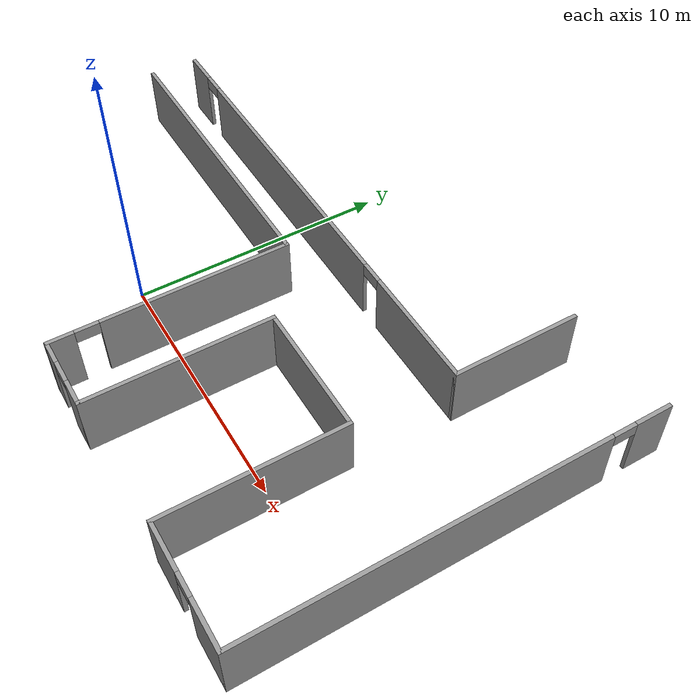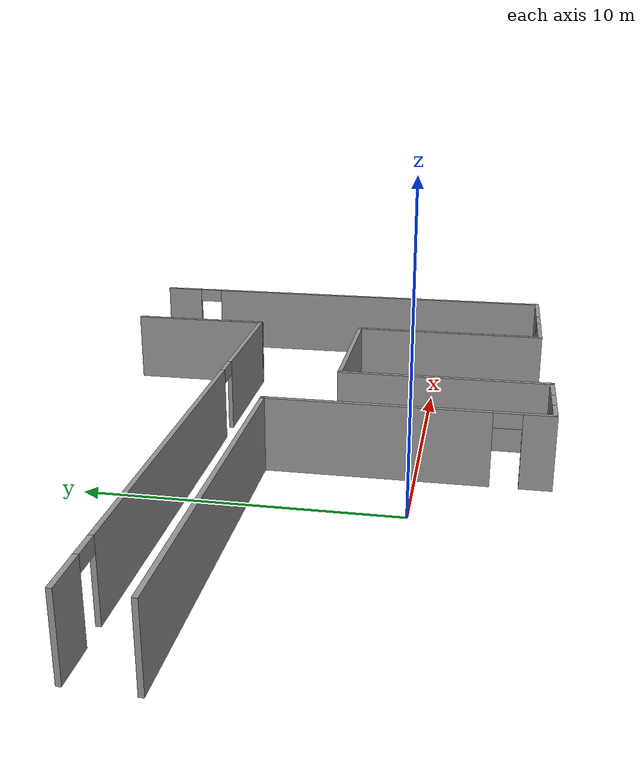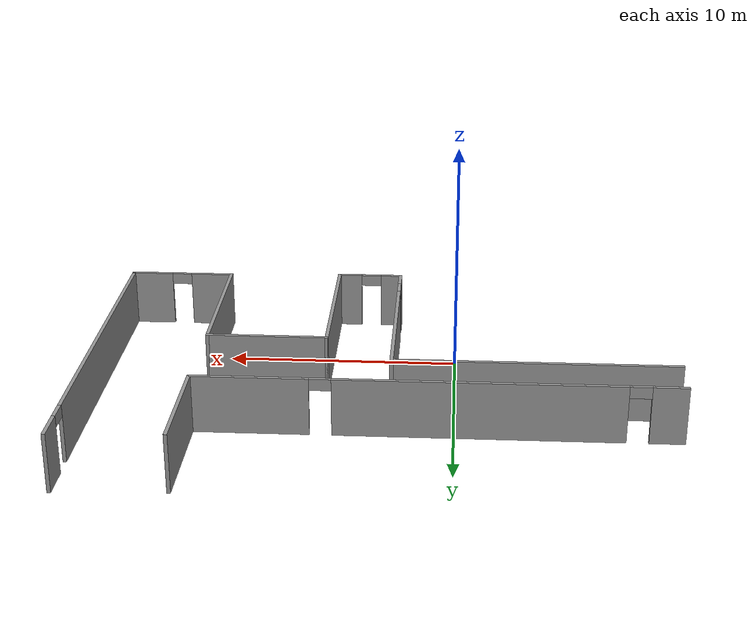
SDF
<?xml version='1.0'?>
<sdf version='1.7'>
  <model name='mil_building'>
    <pose>2.95776 3.85433 0 0 -0 0</pose>
    <link name='Wall_10'>
      <collision name='Wall_10_Collision'>
        <geometry>
          <box>
            <size>0.15 0.15 2.5</size>
          </box>
        </geometry>
        <pose>0 0 1.25 0 -0 0</pose>
      </collision>
      <visual name='Wall_10_Visual'>
        <pose>0 0 1.25 0 -0 0</pose>
        <geometry>
          <box>
            <size>0.15 0.15 2.5</size>
          </box>
        </geometry>
        <material>
          <script>
            <uri>file://media/materials/scripts/gazebo.material</uri>
            <name>Gazebo/Grey</name>
          </script>
          <ambient>1 1 1 1</ambient>
        </material>
        <meta>
          <layer>0</layer>
        </meta>
      </visual>
      <pose>2.5019 -8.05 0 0 -0 0</pose>
    </link>
    <link name='Wall_11'>
      <collision name='Wall_11_Collision'>
        <geometry>
          <box>
            <size>7.20977 0.15 2.5</size>
          </box>
        </geometry>
        <pose>0 0 1.25 0 -0 0</pose>
      </collision>
      <visual name='Wall_11_Visual'>
        <pose>0 0 1.25 0 -0 0</pose>
        <geometry>
          <box>
            <size>7.20977 0.15 2.5</size>
          </box>
        </geometry>
        <material>
          <script>
            <uri>file://media/materials/scripts/gazebo.material</uri>
            <name>Gazebo/Grey</name>
          </script>
          <ambient>0.827451 0.843137 0.811765 1</ambient>
        </material>
        <meta>
          <layer>0</layer>
        </meta>
      </visual>
      <pose>2.5019 -4.52011 0 0 -0 1.5708</pose>
    </link>
    <link name='Wall_16'>
      <collision name='Wall_16_Collision'>
        <geometry>
          <box>
            <size>6.95977 0.15 2.5</size>
          </box>
        </geometry>
        <pose>0 0 1.25 0 -0 0</pose>
      </collision>
      <visual name='Wall_16_Visual'>
        <pose>0 0 1.25 0 -0 0</pose>
        <geometry>
          <box>
            <size>6.95977 0.15 2.5</size>
          </box>
        </geometry>
        <material>
          <script>
            <uri>file://media/materials/scripts/gazebo.material</uri>
            <name>Gazebo/Grey</name>
          </script>
          <ambient>1 1 1 1</ambient>
        </material>
        <meta>
          <layer>0</layer>
        </meta>
      </visual>
      <pose>7.6019 -4.39511 0 0 -0 -1.5708</pose>
    </link>
    <link name='Wall_17'>
      <pose>9.9019 -7.8 0 0 -0 0</pose>
      <visual name='Wall_17_Visual_0'>
        <pose>-1.40412 0 1.25 0 -0 0</pose>
        <geometry>
          <box>
            <size>1.94176 0.15 2.5</size>
          </box>
        </geometry>
        <material>
          <script>
            <uri>file://media/materials/scripts/gazebo.material</uri>
            <name>Gazebo/Grey</name>
          </script>
          <ambient>0.827451 0.843137 0.811765 1</ambient>
        </material>
        <meta>
          <layer>0</layer>
        </meta>
      </visual>
      <collision name='Wall_17_Collision_0'>
        <geometry>
          <box>
            <size>1.94176 0.15 2.5</size>
          </box>
        </geometry>
        <pose>-1.40412 0 1.25 0 -0 0</pose>
      </collision>
      <visual name='Wall_17_Visual_1'>
        <pose>1.42088 0 1.25 0 -0 0</pose>
        <geometry>
          <box>
            <size>1.90823 0.15 2.5</size>
          </box>
        </geometry>
        <material>
          <script>
            <uri>file://media/materials/scripts/gazebo.material</uri>
            <name>Gazebo/Grey</name>
          </script>
          <ambient>0.827451 0.843137 0.811765 1</ambient>
        </material>
        <meta>
          <layer>0</layer>
        </meta>
      </visual>
      <collision name='Wall_17_Collision_1'>
        <geometry>
          <box>
            <size>1.90823 0.15 2.5</size>
          </box>
        </geometry>
        <pose>1.42088 0 1.25 0 -0 0</pose>
      </collision>
      <visual name='Wall_17_Visual_2'>
        <pose>0.016765 0 2.25 0 -0 0</pose>
        <geometry>
          <box>
            <size>0.9 0.15 0.5</size>
          </box>
        </geometry>
        <material>
          <script>
            <uri>file://media/materials/scripts/gazebo.material</uri>
            <name>Gazebo/Grey</name>
          </script>
          <ambient>0.827451 0.843137 0.811765 1</ambient>
        </material>
        <meta>
          <layer>0</layer>
        </meta>
      </visual>
      <collision name='Wall_17_Collision_2'>
        <geometry>
          <box>
            <size>0.9 0.15 0.5</size>
          </box>
        </geometry>
        <pose>0.016765 0 2.25 0 -0 0</pose>
      </collision>
    </link>
    <link name='Wall_18'>
      <pose>12.2019 0.125 0 0 -0 1.5708</pose>
      <visual name='Wall_18_Visual_0'>
        <pose>-1.17215 0 1.25 0 -0 0</pose>
        <geometry>
          <box>
            <size>13.6557 0.15 2.5</size>
          </box>
        </geometry>
        <material>
          <script>
            <uri>file://media/materials/scripts/gazebo.material</uri>
            <name>Gazebo/Grey</name>
          </script>
          <ambient>0.827451 0.843137 0.811765 1</ambient>
        </material>
        <meta>
          <layer>0</layer>
        </meta>
      </visual>
      <collision name='Wall_18_Collision_0'>
        <geometry>
          <box>
            <size>13.6557 0.15 2.5</size>
          </box>
        </geometry>
        <pose>-1.17215 0 1.25 0 -0 0</pose>
      </collision>
      <visual name='Wall_18_Visual_1'>
        <pose>7.27785 0 1.25 0 -0 0</pose>
        <geometry>
          <box>
            <size>1.4443 0.15 2.5</size>
          </box>
        </geometry>
        <material>
          <script>
            <uri>file://media/materials/scripts/gazebo.material</uri>
            <name>Gazebo/Grey</name>
          </script>
          <ambient>0.827451 0.843137 0.811765 1</ambient>
        </material>
        <meta>
          <layer>0</layer>
        </meta>
      </visual>
      <collision name='Wall_18_Collision_1'>
        <geometry>
          <box>
            <size>1.4443 0.15 2.5</size>
          </box>
        </geometry>
        <pose>7.27785 0 1.25 0 -0 0</pose>
      </collision>
      <visual name='Wall_18_Visual_2'>
        <pose>6.1057 0 2.25 0 -0 0</pose>
        <geometry>
          <box>
            <size>0.9 0.15 0.5</size>
          </box>
        </geometry>
        <material>
          <script>
            <uri>file://media/materials/scripts/gazebo.material</uri>
            <name>Gazebo/Grey</name>
          </script>
          <ambient>0.827451 0.843137 0.811765 1</ambient>
        </material>
        <meta>
          <layer>0</layer>
        </meta>
      </visual>
      <collision name='Wall_18_Collision_2'>
        <geometry>
          <box>
            <size>0.9 0.15 0.5</size>
          </box>
        </geometry>
        <pose>6.1057 0 2.25 0 -0 0</pose>
      </collision>
    </link>
    <link name='Wall_20'>
      <collision name='Wall_20_Collision'>
        <geometry>
          <box>
            <size>5 0.15 2.5</size>
          </box>
        </geometry>
        <pose>0 0 1.25 0 -0 0</pose>
      </collision>
      <visual name='Wall_20_Visual'>
        <pose>0 0 1.25 0 -0 0</pose>
        <geometry>
          <box>
            <size>5 0.15 2.5</size>
          </box>
        </geometry>
        <material>
          <script>
            <uri>file://media/materials/scripts/gazebo.material</uri>
            <name>Gazebo/Grey</name>
          </script>
          <ambient>0.827451 0.843137 0.811765 1</ambient>
        </material>
        <meta>
          <layer>0</layer>
        </meta>
      </visual>
      <pose>7.69848 5.40255 0 0 -0 1.5708</pose>
    </link>
    <link name='Wall_22'>
      <collision name='Wall_22_Collision'>
        <geometry>
          <box>
            <size>5.25 0.15 2.5</size>
          </box>
        </geometry>
        <pose>0 0 1.25 0 -0 0</pose>
      </collision>
      <visual name='Wall_22_Visual'>
        <pose>0 0 1.25 0 -0 0</pose>
        <geometry>
          <box>
            <size>5.25 0.15 2.5</size>
          </box>
        </geometry>
        <material>
          <script>
            <uri>file://media/materials/scripts/gazebo.material</uri>
            <name>Gazebo/Grey</name>
          </script>
          <ambient>0.827451 0.843137 0.811765 1</ambient>
        </material>
        <meta>
          <layer>0</layer>
        </meta>
      </visual>
      <pose>5.0519 -0.990227 0 0 -0 0</pose>
    </link>
    <link name='Wall_3'>
      <pose>-2.22652 2.97755 0 0 -0 0</pose>
      <visual name='Wall_3_Visual_0'>
        <pose>-9.26763 0 1.25 0 -0 0</pose>
        <geometry>
          <box>
            <size>1.46474 0.15 2.5</size>
          </box>
        </geometry>
        <material>
          <script>
            <uri>file://media/materials/scripts/gazebo.material</uri>
            <name>Gazebo/Grey</name>
          </script>
          <ambient>0.827451 0.843137 0.811765 1</ambient>
        </material>
        <meta>
          <layer>0</layer>
        </meta>
      </visual>
      <collision name='Wall_3_Collision_0'>
        <geometry>
          <box>
            <size>1.46474 0.15 2.5</size>
          </box>
        </geometry>
        <pose>-9.26763 0 1.25 0 -0 0</pose>
      </collision>
      <visual name='Wall_3_Visual_1'>
        <pose>-1.71657 0 1.25 0 -0 0</pose>
        <geometry>
          <box>
            <size>11.8374 0.15 2.5</size>
          </box>
        </geometry>
        <material>
          <script>
            <uri>file://media/materials/scripts/gazebo.material</uri>
            <name>Gazebo/Grey</name>
          </script>
          <ambient>0.827451 0.843137 0.811765 1</ambient>
        </material>
        <meta>
          <layer>0</layer>
        </meta>
      </visual>
      <collision name='Wall_3_Collision_1'>
        <geometry>
          <box>
            <size>11.8374 0.15 2.5</size>
          </box>
        </geometry>
        <pose>-1.71657 0 1.25 0 -0 0</pose>
      </collision>
      <visual name='Wall_3_Visual_2'>
        <pose>7.55105 0 1.25 0 -0 0</pose>
        <geometry>
          <box>
            <size>4.89789 0.15 2.5</size>
          </box>
        </geometry>
        <material>
          <script>
            <uri>file://media/materials/scripts/gazebo.material</uri>
            <name>Gazebo/Grey</name>
          </script>
          <ambient>0.827451 0.843137 0.811765 1</ambient>
        </material>
        <meta>
          <layer>0</layer>
        </meta>
      </visual>
      <collision name='Wall_3_Collision_2'>
        <geometry>
          <box>
            <size>4.89789 0.15 2.5</size>
          </box>
        </geometry>
        <pose>7.55105 0 1.25 0 -0 0</pose>
      </collision>
      <visual name='Wall_3_Visual_3'>
        <pose>-8.08526 0 2.25 0 -0 0</pose>
        <geometry>
          <box>
            <size>0.9 0.15 0.5</size>
          </box>
        </geometry>
        <material>
          <script>
            <uri>file://media/materials/scripts/gazebo.material</uri>
            <name>Gazebo/Grey</name>
          </script>
          <ambient>0.827451 0.843137 0.811765 1</ambient>
        </material>
        <meta>
          <layer>0</layer>
        </meta>
      </visual>
      <collision name='Wall_3_Collision_3'>
        <geometry>
          <box>
            <size>0.9 0.15 0.5</size>
          </box>
        </geometry>
        <pose>-8.08526 0 2.25 0 -0 0</pose>
      </collision>
      <visual name='Wall_3_Visual_4'>
        <pose>4.65211 0 2.25 0 -0 0</pose>
        <geometry>
          <box>
            <size>0.9 0.15 0.5</size>
          </box>
        </geometry>
        <material>
          <script>
            <uri>file://media/materials/scripts/gazebo.material</uri>
            <name>Gazebo/Grey</name>
          </script>
          <ambient>0.827451 0.843137 0.811765 1</ambient>
        </material>
        <meta>
          <layer>0</layer>
        </meta>
      </visual>
      <collision name='Wall_3_Collision_4'>
        <geometry>
          <box>
            <size>0.9 0.15 0.5</size>
          </box>
        </geometry>
        <pose>4.65211 0 2.25 0 -0 0</pose>
      </collision>
    </link>
    <link name='Wall_5'>
      <collision name='Wall_5_Collision'>
        <geometry>
          <box>
            <size>12 0.15 2.5</size>
          </box>
        </geometry>
        <pose>0 0 1.25 0 -0 0</pose>
      </collision>
      <visual name='Wall_5_Visual'>
        <pose>0 0 1.25 0 -0 0</pose>
        <geometry>
          <box>
            <size>12 0.15 2.5</size>
          </box>
        </geometry>
        <material>
          <script>
            <uri>file://media/materials/scripts/gazebo.material</uri>
            <name>Gazebo/Grey</name>
          </script>
          <ambient>0.827451 0.843137 0.811765 1</ambient>
        </material>
        <meta>
          <layer>0</layer>
        </meta>
      </visual>
      <pose>-6.2769 1.04895 0 0 -0 0</pose>
    </link>
    <link name='Wall_7'>
      <pose>-0.348098 -3.5 0 0 -0 -1.5708</pose>
      <visual name='Wall_7_Visual_0'>
        <pose>-0.971314 0 1.25 0 -0 0</pose>
        <geometry>
          <box>
            <size>7.30737 0.15 2.5</size>
          </box>
        </geometry>
        <material>
          <script>
            <uri>file://media/materials/scripts/gazebo.material</uri>
            <name>Gazebo/Grey</name>
          </script>
          <ambient>0.827451 0.843137 0.811765 1</ambient>
        </material>
        <meta>
          <layer>0</layer>
        </meta>
      </visual>
      <collision name='Wall_7_Collision_0'>
        <geometry>
          <box>
            <size>7.30737 0.15 2.5</size>
          </box>
        </geometry>
        <pose>-0.971314 0 1.25 0 -0 0</pose>
      </collision>
      <visual name='Wall_7_Visual_1'>
        <pose>4.10369 0 1.25 0 -0 0</pose>
        <geometry>
          <box>
            <size>1.04263 0.15 2.5</size>
          </box>
        </geometry>
        <material>
          <script>
            <uri>file://media/materials/scripts/gazebo.material</uri>
            <name>Gazebo/Grey</name>
          </script>
          <ambient>0.827451 0.843137 0.811765 1</ambient>
        </material>
        <meta>
          <layer>0</layer>
        </meta>
      </visual>
      <collision name='Wall_7_Collision_1'>
        <geometry>
          <box>
            <size>1.04263 0.15 2.5</size>
          </box>
        </geometry>
        <pose>4.10369 0 1.25 0 -0 0</pose>
      </collision>
      <visual name='Wall_7_Visual_2'>
        <pose>3.13237 0 2.25 0 -0 0</pose>
        <geometry>
          <box>
            <size>0.9 0.15 0.5</size>
          </box>
        </geometry>
        <material>
          <script>
            <uri>file://media/materials/scripts/gazebo.material</uri>
            <name>Gazebo/Grey</name>
          </script>
          <ambient>0.827451 0.843137 0.811765 1</ambient>
        </material>
        <meta>
          <layer>0</layer>
        </meta>
      </visual>
      <collision name='Wall_7_Collision_2'>
        <geometry>
          <box>
            <size>0.9 0.15 0.5</size>
          </box>
        </geometry>
        <pose>3.13237 0 2.25 0 -0 0</pose>
      </collision>
    </link>
    <link name='Wall_9'>
      <pose>1.0769 -8.05 0 0 -0 0</pose>
      <visual name='Wall_9_Visual_0'>
        <pose>-1.00827 0 1.25 0 -0 0</pose>
        <geometry>
          <box>
            <size>0.983456 0.15 2.5</size>
          </box>
        </geometry>
        <material>
          <script>
            <uri>file://media/materials/scripts/gazebo.material</uri>
            <name>Gazebo/Grey</name>
          </script>
          <ambient>0.827451 0.843137 0.811765 1</ambient>
        </material>
        <meta>
          <layer>0</layer>
        </meta>
      </visual>
      <collision name='Wall_9_Collision_0'>
        <geometry>
          <box>
            <size>0.983456 0.15 2.5</size>
          </box>
        </geometry>
        <pose>-1.00827 0 1.25 0 -0 0</pose>
      </collision>
      <visual name='Wall_9_Visual_1'>
        <pose>0.941728 0 1.25 0 -0 0</pose>
        <geometry>
          <box>
            <size>1.11654 0.15 2.5</size>
          </box>
        </geometry>
        <material>
          <script>
            <uri>file://media/materials/scripts/gazebo.material</uri>
            <name>Gazebo/Grey</name>
          </script>
          <ambient>0.827451 0.843137 0.811765 1</ambient>
        </material>
        <meta>
          <layer>0</layer>
        </meta>
      </visual>
      <collision name='Wall_9_Collision_1'>
        <geometry>
          <box>
            <size>1.11654 0.15 2.5</size>
          </box>
        </geometry>
        <pose>0.941728 0 1.25 0 -0 0</pose>
      </collision>
      <visual name='Wall_9_Visual_2'>
        <pose>-0.066544 0 2.25 0 -0 0</pose>
        <geometry>
          <box>
            <size>0.9 0.15 0.5</size>
          </box>
        </geometry>
        <material>
          <script>
            <uri>file://media/materials/scripts/gazebo.material</uri>
            <name>Gazebo/Grey</name>
          </script>
          <ambient>0.827451 0.843137 0.811765 1</ambient>
        </material>
        <meta>
          <layer>0</layer>
        </meta>
      </visual>
      <collision name='Wall_9_Collision_2'>
        <geometry>
          <box>
            <size>0.9 0.15 0.5</size>
          </box>
        </geometry>
        <pose>-0.066544 0 2.25 0 -0 0</pose>
      </collision>
    </link>
    <static>1</static>
  </model>
</sdf>
